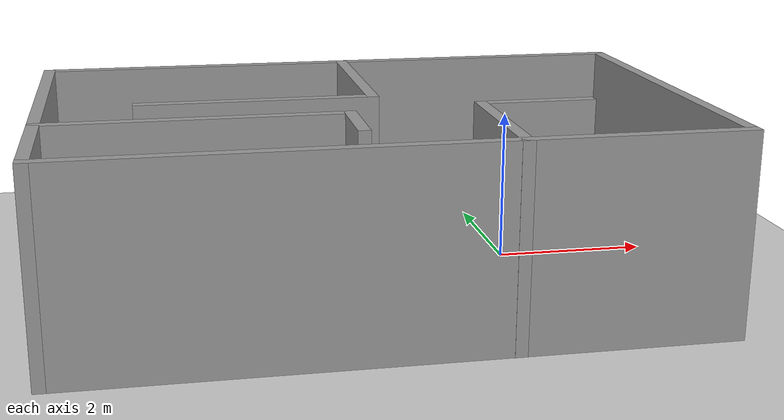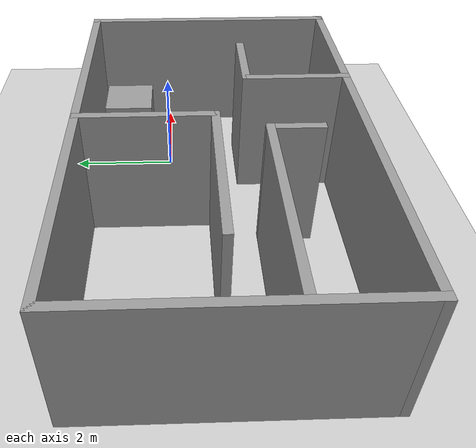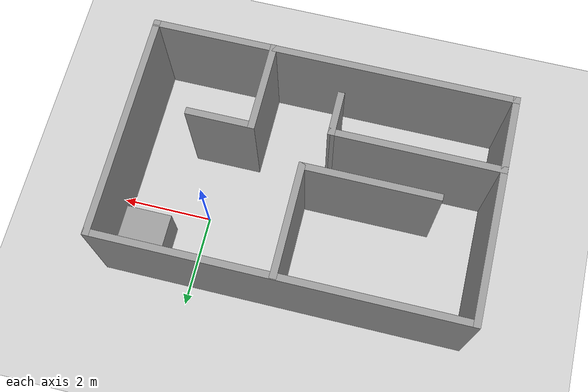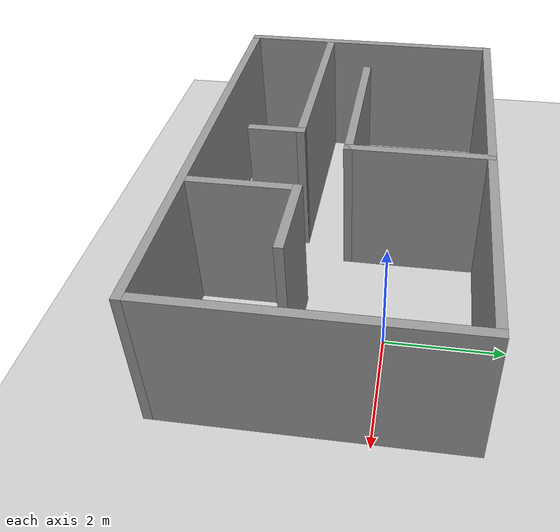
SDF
<sdf version="1.7">
 <world name="default">
  <light name="sun" type="directional">
   <pose>0 0 10 0 -0 0</pose>
   <diffuse>0.8 0.8 0.8 1</diffuse>
   <specular>0.2 0.2 0.2 1</specular>
   <attenuation>
    <range>1000</range>
    <constant>0.9</constant>
    <linear>0.01</linear>
    <quadratic>0.001</quadratic>
   </attenuation>
   <direction>-0.5 0.1 -0.9</direction>
   <spot><inner_angle>0</inner_angle><outer_angle>0</outer_angle><falloff>0</falloff></spot>
  </light>
  <model name="ground_plane">
   <static>1</static>
   <link name="link">
    <collision name="collision">
     <geometry><plane><normal>0 0 1</normal><size>100 100</size></plane></geometry>
     <surface><friction><ode><mu>100</mu><mu2>50</mu2></ode></friction></surface>
    </collision>
    <visual name="visual">
     <cast_shadows>0</cast_shadows>
     <geometry><plane><normal>0 0 1</normal><size>100 100</size></plane></geometry>
     <material>
      <script><uri>file://media/materials/scripts/gazebo.material</uri><name>Gazebo/Grey</name></script>
     </material>
    </visual>
   </link>
  </model>
  <gravity>0 0 -9.8</gravity>
  <magnetic_field>6e-06 2.3e-05 -4.2e-05</magnetic_field>
  <atmosphere type="adiabatic"/>
  <physics type="ode">
   <max_step_size>0.001</max_step_size>
   <real_time_factor>1</real_time_factor>
   <real_time_update_rate>1000</real_time_update_rate>
  </physics>
  <scene><ambient>0.4 0.4 0.4 1</ambient><background>0.7 0.7 0.7 1</background><shadows>1</shadows></scene>
  <spherical_coordinates>
   <surface_model>EARTH_WGS84</surface_model>
   <latitude_deg>0</latitude_deg>
   <longitude_deg>0</longitude_deg>
   <elevation>0</elevation>
   <heading_deg>0</heading_deg>
  </spherical_coordinates>
  <model name="room">
   <pose>-2.06383 -0.511295 0 0 -0 0</pose>
   <link name="Wall_0">
    <collision name="Wall_0_Collision">
     <geometry><box><size>8 0.15 2.5</size></box></geometry>
     <pose>0 0 1.25 0 -0 0</pose>
    </collision>
    <visual name="Wall_0_Visual">
     <pose>0 0 1.25 0 -0 0</pose>
     <geometry><box><size>8 0.15 2.5</size></box></geometry>
     <material>
      <script><uri>file://media/materials/scripts/gazebo.material</uri><name>Gazebo/Grey</name></script>
      <ambient>1 1 1 1</ambient>
     </material>
     <meta><layer>0</layer></meta>
    </visual>
    <pose>0 2.04387 0 0 -0 0</pose>
   </link>
   <link name="Wall_1">
    <collision name="Wall_1_Collision">
     <geometry><box><size>5 0.15 2.5</size></box></geometry>
     <pose>0 0 1.25 0 -0 0</pose>
    </collision>
    <visual name="Wall_1_Visual">
     <pose>0 0 1.25 0 -0 0</pose>
     <geometry><box><size>5 0.15 2.5</size></box></geometry>
     <material>
      <script><uri>file://media/materials/scripts/gazebo.material</uri><name>Gazebo/Grey</name></script>
      <ambient>1 1 1 1</ambient>
     </material>
     <meta><layer>0</layer></meta>
    </visual>
    <pose>3.925 -0.381133 0 0 -0 -1.5708</pose>
   </link>
   <link name="Wall_10">
    <collision name="Wall_10_Collision">
     <geometry><box><size>1 0.15 2.5</size></box></geometry>
     <pose>0 0 1.25 0 -0 0</pose>
    </collision>
    <visual name="Wall_10_Visual">
     <pose>0 0 1.25 0 -0 0</pose>
     <geometry><box><size>1 0.15 2.5</size></box></geometry>
     <material>
      <script><uri>file://media/materials/scripts/gazebo.material</uri><name>Gazebo/Grey</name></script>
      <ambient>1 1 1 1</ambient>
     </material>
     <meta><layer>0</layer></meta>
    </visual>
    <pose>-0.321182 -1.62387 0 0 -0 -1.5708</pose>
   </link>
   <link name="Wall_12">
    <collision name="Wall_12_Collision">
     <geometry><box><size>2 0.15 2.5</size></box></geometry>
     <pose>0 0 1.25 0 -0 0</pose>
    </collision>
    <visual name="Wall_12_Visual">
     <pose>0 0 1.25 0 -0 0</pose>
     <geometry><box><size>2 0.15 2.5</size></box></geometry>
     <material>
      <script><uri>file://media/materials/scripts/gazebo.material</uri><name>Gazebo/Grey</name></script>
      <ambient>1 1 1 1</ambient>
     </material>
     <meta><layer>0</layer></meta>
    </visual>
    <pose>1.32282 -1.88387 0 0 -0 1.5708</pose>
   </link>
   <link name="Wall_13">
    <collision name="Wall_13_Collision">
     <geometry><box><size>1.5 0.15 2.5</size></box></geometry>
     <pose>0 0 1.25 0 -0 0</pose>
    </collision>
    <visual name="Wall_13_Visual">
     <pose>0 0 1.25 0 -0 0</pose>
     <geometry><box><size>1.5 0.15 2.5</size></box></geometry>
     <material>
      <script><uri>file://media/materials/scripts/gazebo.material</uri><name>Gazebo/Grey</name></script>
      <ambient>1 1 1 1</ambient>
     </material>
     <meta><layer>0</layer></meta>
    </visual>
    <pose>1.99782 -0.958867 0 0 -0 0</pose>
   </link>
   <link name="Wall_2">
    <collision name="Wall_2_Collision">
     <geometry><box><size>8 0.15 2.5</size></box></geometry>
     <pose>0 0 1.25 0 -0 0</pose>
    </collision>
    <visual name="Wall_2_Visual">
     <pose>0 0 1.25 0 -0 0</pose>
     <geometry><box><size>8 0.15 2.5</size></box></geometry>
     <material>
      <script><uri>file://media/materials/scripts/gazebo.material</uri><name>Gazebo/Grey</name></script>
      <ambient>1 1 1 1</ambient>
     </material>
     <meta><layer>0</layer></meta>
    </visual>
    <pose>0 -2.80613 0 0 -0 3.14159</pose>
   </link>
   <link name="Wall_3">
    <collision name="Wall_3_Collision">
     <geometry><box><size>5 0.15 2.5</size></box></geometry>
     <pose>0 0 1.25 0 -0 0</pose>
    </collision>
    <visual name="Wall_3_Visual">
     <pose>0 0 1.25 0 -0 0</pose>
     <geometry><box><size>5 0.15 2.5</size></box></geometry>
     <material>
      <script><uri>file://media/materials/scripts/gazebo.material</uri><name>Gazebo/Grey</name></script>
      <ambient>1 1 1 1</ambient>
     </material>
     <meta><layer>0</layer></meta>
    </visual>
    <pose>-3.925 -0.381133 0 0 -0 1.5708</pose>
   </link>
   <link name="Wall_5">
    <collision name="Wall_5_Collision">
     <geometry><box><size>2.5 0.15 2.5</size></box></geometry>
     <pose>0 0 1.25 0 -0 0</pose>
    </collision>
    <visual name="Wall_5_Visual">
     <pose>0 0 1.25 0 -0 0</pose>
     <geometry><box><size>2.5 0.15 2.5</size></box></geometry>
     <material>
      <script><uri>file://media/materials/scripts/gazebo.material</uri><name>Gazebo/Grey</name></script>
      <ambient>1 1 1 1</ambient>
     </material>
     <meta><layer>0</layer></meta>
    </visual>
    <pose>0.099077 0.853555 0 0 -0 -1.5708</pose>
   </link>
   <link name="Wall_6">
    <collision name="Wall_6_Collision">
     <geometry><box><size>3 0.15 2.5</size></box></geometry>
     <pose>0 0 1.25 0 -0 0</pose>
    </collision>
    <visual name="Wall_6_Visual">
     <pose>0 0 1.25 0 -0 0</pose>
     <geometry><box><size>3 0.15 2.5</size></box></geometry>
     <material>
      <script><uri>file://media/materials/scripts/gazebo.material</uri><name>Gazebo/Grey</name></script>
      <ambient>1 1 1 1</ambient>
     </material>
     <meta><layer>0</layer></meta>
    </visual>
    <pose>-1.32592 -0.321445 0 0 -0 3.14159</pose>
   </link>
   <link name="Wall_9">
    <collision name="Wall_9_Collision">
     <geometry><box><size>3.75 0.15 2.5</size></box></geometry>
     <pose>0 0 1.25 0 -0 0</pose>
    </collision>
    <visual name="Wall_9_Visual">
     <pose>0 0 1.25 0 -0 0</pose>
     <geometry><box><size>3.75 0.15 2.5</size></box></geometry>
     <material>
      <script><uri>file://media/materials/scripts/gazebo.material</uri><name>Gazebo/Grey</name></script>
      <ambient>1 1 1 1</ambient>
     </material>
     <meta><layer>0</layer></meta>
    </visual>
    <pose>-2.12118 -1.19887 0 0 -0 0</pose>
   </link>
   <static>1</static>
  </model>
  <model name="unit_box">
   <pose>1.14966 0.894883 0.499995 -0 1e-05 1e-06</pose>
   <link name="link">
    <inertial>
     <mass>1</mass>
     <inertia>
      <ixx>0.166667</ixx>
      <ixy>0</ixy>
      <ixz>0</ixz>
      <iyy>0.166667</iyy>
      <iyz>0</iyz>
      <izz>0.166667</izz>
     </inertia>
    </inertial>
    <collision name="collision"><geometry><box><size>1 1 1</size></box></geometry></collision>
    <visual name="visual">
     <geometry><box><size>1 1 1</size></box></geometry>
     <material>
      <script><name>Gazebo/Grey</name><uri>file://media/materials/scripts/gazebo.material</uri></script>
     </material>
    </visual>
   </link>
  </model>
 </world>
</sdf>
